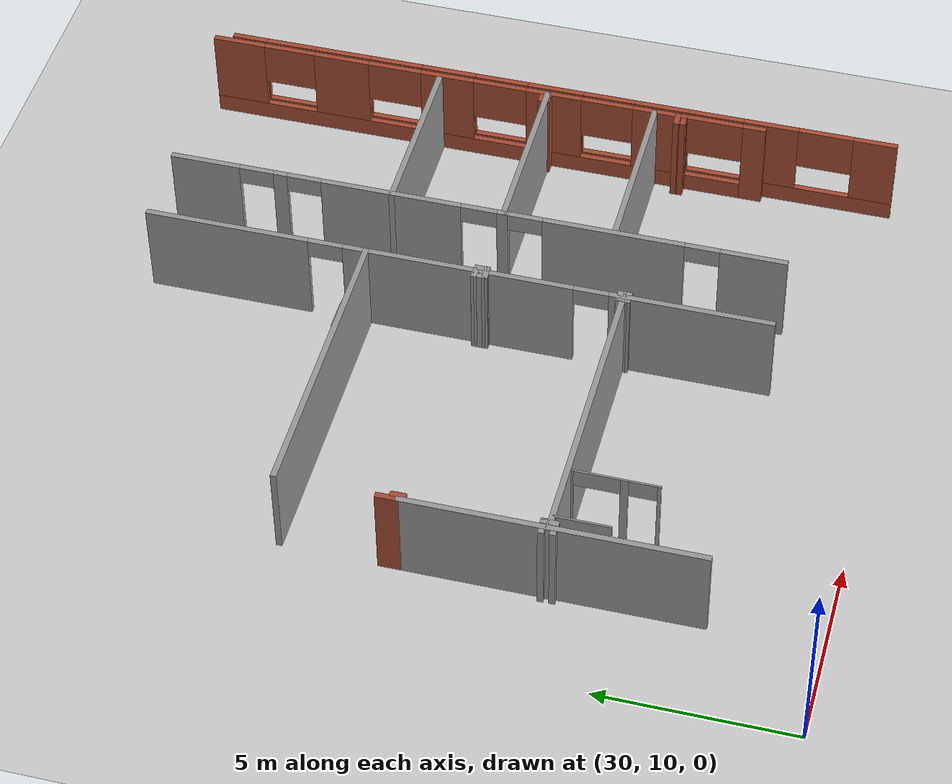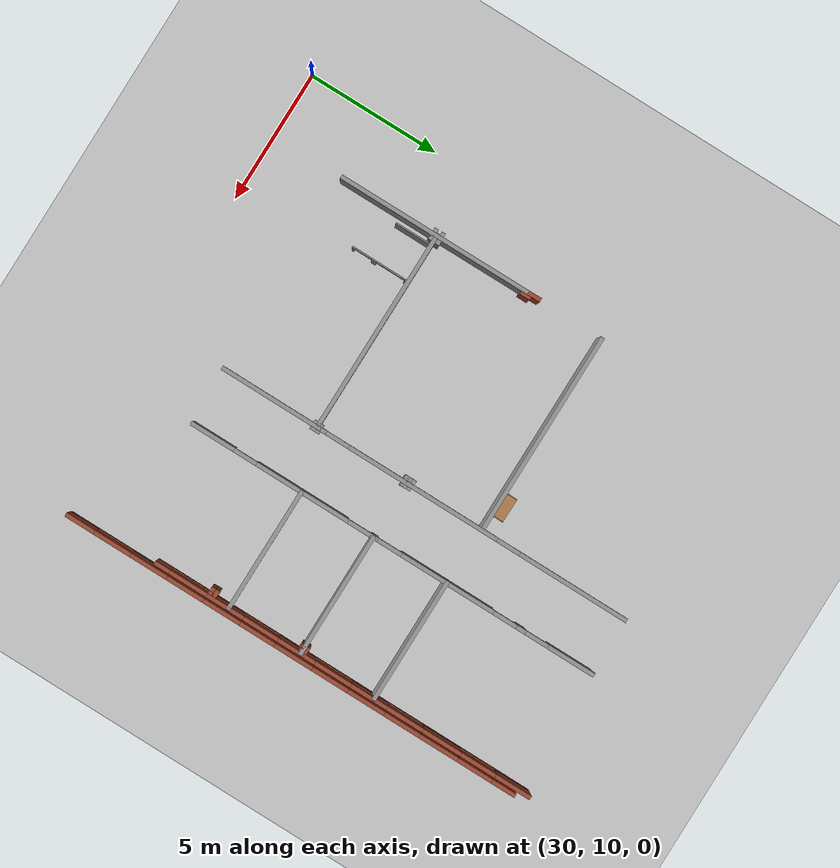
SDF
<sdf version="1.6">
 <world name="default">
  <model name="ground_plane">
   <static>1</static>
   <link name="link">
    <collision name="collision">
     <geometry><plane><normal>0 0 1</normal><size>100 100</size></plane></geometry>
     <surface><friction><ode><mu>100</mu><mu2>50</mu2></ode></friction></surface>
    </collision>
    <visual name="visual">
     <cast_shadows>0</cast_shadows>
     <geometry><plane><normal>0 0 1</normal><size>100 100</size></plane></geometry>
     <material>
      <script><uri>file://media/materials/scripts/gazebo.material</uri><name>Gazebo/Grey</name></script>
     </material>
    </visual>
   </link>
  </model>
  <model name="CVSSP">
   <pose>23.8714 24.094 0 0 -0 0</pose>
   <link name="Wall_11">
    <pose>16.2898 -3.24326 0 0 0 -1.57079</pose>
    <visual name="Wall_11_Visual_0">
     <pose>-5.93516 0 1.25 0 -0 0</pose>
     <geometry><box><size>4.26019 0.15 2.5</size></box></geometry>
     <material>
      <script><uri>file://media/materials/scripts/gazebo.material</uri><name>Gazebo/Grey</name></script>
      <ambient>0.588235 0.588235 0.588235 1</ambient>
     </material>
    </visual>
    <collision name="Wall_11_Collision_0">
     <geometry><box><size>4.26019 0.15 2.5</size></box></geometry>
     <pose>-5.93516 0 1.25 0 -0 0</pose>
    </collision>
    <visual name="Wall_11_Visual_1">
     <pose>0.054186 0 1.25 0 -0 0</pose>
     <geometry><box><size>5.9185 0.15 2.5</size></box></geometry>
     <material>
      <script><uri>file://media/materials/scripts/gazebo.material</uri><name>Gazebo/Grey</name></script>
      <ambient>0.588235 0.588235 0.588235 1</ambient>
     </material>
    </visual>
    <collision name="Wall_11_Collision_1">
     <geometry><box><size>5.9185 0.15 2.5</size></box></geometry>
     <pose>0.054186 0 1.25 0 -0 0</pose>
    </collision>
    <visual name="Wall_11_Visual_2">
     <pose>5.98935 0 1.25 0 -0 0</pose>
     <geometry><box><size>4.15182 0.15 2.5</size></box></geometry>
     <material>
      <script><uri>file://media/materials/scripts/gazebo.material</uri><name>Gazebo/Grey</name></script>
      <ambient>0.588235 0.588235 0.588235 1</ambient>
     </material>
    </visual>
    <collision name="Wall_11_Collision_2">
     <geometry><box><size>4.15182 0.15 2.5</size></box></geometry>
     <pose>5.98935 0 1.25 0 -0 0</pose>
    </collision>
    <visual name="Wall_11_Visual_3">
     <pose>-3.35506 0 2.25 0 -0 0</pose>
     <geometry><box><size>0.9 0.15 0.5</size></box></geometry>
     <material>
      <script><uri>file://media/materials/scripts/gazebo.material</uri><name>Gazebo/Grey</name></script>
      <ambient>0.588235 0.588235 0.588235 1</ambient>
     </material>
    </visual>
    <collision name="Wall_11_Collision_3">
     <geometry><box><size>0.9 0.15 0.5</size></box></geometry>
     <pose>-3.35506 0 2.25 0 -0 0</pose>
    </collision>
    <visual name="Wall_11_Visual_4">
     <pose>3.46344 0 2.25 0 -0 0</pose>
     <geometry><box><size>0.9 0.15 0.5</size></box></geometry>
     <material>
      <script><uri>file://media/materials/scripts/gazebo.material</uri><name>Gazebo/Grey</name></script>
      <ambient>0.588235 0.588235 0.588235 1</ambient>
     </material>
    </visual>
    <collision name="Wall_11_Collision_4">
     <geometry><box><size>0.9 0.15 0.5</size></box></geometry>
     <pose>3.46344 0 2.25 0 -0 0</pose>
    </collision>
   </link>
   <link name="Wall_116">
    <collision name="Wall_116_Collision">
     <geometry><box><size>7.43734 0.15 2.5</size></box></geometry>
     <pose>0 0 1.25 0 -0 0</pose>
    </collision>
    <visual name="Wall_116_Visual">
     <pose>0 0 1.25 0 -0 0</pose>
     <geometry><box><size>7.43734 0.15 2.5</size></box></geometry>
     <material>
      <script><uri>file://media/materials/scripts/gazebo.material</uri><name>Gazebo/Grey</name></script>
      <ambient>1 1 1 1</ambient>
     </material>
    </visual>
    <pose>8.67152 -7.59872 0 0 -0 1.57447</pose>
   </link>
   <link name="Wall_118">
    <collision name="Wall_118_Collision">
     <geometry><box><size>0.6489 0.15 2.5</size></box></geometry>
     <pose>0 0 1.25 0 -0 0</pose>
    </collision>
    <visual name="Wall_118_Visual">
     <pose>0 0 1.25 0 -0 0</pose>
     <geometry><box><size>0.6489 0.15 2.5</size></box></geometry>
     <material>
      <script><uri>file://media/materials/scripts/gazebo.material</uri><name>Gazebo/Bricks</name></script>
      <ambient>1 1 1 1</ambient>
     </material>
    </visual>
    <pose>8.65546 -3.70564 0 0 0 -1.56013</pose>
   </link>
   <link name="Wall_122">
    <collision name="Wall_122_Collision">
     <geometry><box><size>0.399527 0.15 2.5</size></box></geometry>
     <pose>0 0 1.25 0 -0 0</pose>
    </collision>
    <visual name="Wall_122_Visual">
     <pose>0 0 1.25 0 -0 0</pose>
     <geometry><box><size>0.399527 0.15 2.5</size></box></geometry>
     <material>
      <script><uri>file://media/materials/scripts/gazebo.material</uri><name>Gazebo/Bricks</name></script>
      <ambient>1 1 1 1</ambient>
     </material>
    </visual>
    <pose>8.77507 -3.90399 0 0 0 -1.5708</pose>
   </link>
   <link name="Wall_125">
    <collision name="Wall_125_Collision">
     <geometry><box><size>7.75 0.15 2.5</size></box></geometry>
     <pose>0 0 1.25 0 -0 0</pose>
    </collision>
    <visual name="Wall_125_Visual">
     <pose>0 0 1.25 0 -0 0</pose>
     <geometry><box><size>7.75 0.15 2.5</size></box></geometry>
     <material>
      <script><uri>file://media/materials/scripts/gazebo.material</uri><name>Gazebo/Grey</name></script>
      <ambient>1 1 1 1</ambient>
     </material>
    </visual>
    <pose>12.4797 -0.937315 0 0 -0 3.14159</pose>
   </link>
   <link name="Wall_127">
    <collision name="Wall_127_Collision">
     <geometry><box><size>7.75 0.15 2.5</size></box></geometry>
     <pose>0 0 1.25 0 -0 0</pose>
    </collision>
    <visual name="Wall_127_Visual">
     <pose>0 0 1.25 0 -0 0</pose>
     <geometry><box><size>7.75 0.15 2.5</size></box></geometry>
     <material>
      <script><uri>file://media/materials/scripts/gazebo.material</uri><name>Gazebo/Grey</name></script>
      <ambient>0.588235 0.588235 0.588235 1</ambient>
     </material>
    </visual>
    <pose>12.4552 -7.51532 0 0 -0 0</pose>
   </link>
   <link name="Wall_134">
    <pose>23.0834 -2.24791 0 0 -0 1.57065</pose>
    <visual name="Wall_134_Visual_0">
     <pose>-7.19251 0 1.25 0 -0 0</pose>
     <geometry><box><size>0.601822 0.15 2.5</size></box></geometry>
     <material>
      <script><uri>file://media/materials/scripts/gazebo.material</uri><name>Gazebo/Bricks</name></script>
      <ambient>1 1 1 1</ambient>
     </material>
    </visual>
    <collision name="Wall_134_Collision_0">
     <geometry><box><size>0.601822 0.15 2.5</size></box></geometry>
     <pose>-7.19251 0 1.25 0 -0 0</pose>
    </collision>
    <visual name="Wall_134_Visual_1">
     <pose>0.300911 0 0.25 0 -0 0</pose>
     <geometry><box><size>14.385 0.15 0.5</size></box></geometry>
     <material>
      <script><uri>file://media/materials/scripts/gazebo.material</uri><name>Gazebo/Bricks</name></script>
      <ambient>1 1 1 1</ambient>
     </material>
    </visual>
    <collision name="Wall_134_Collision_1">
     <geometry><box><size>14.385 0.15 0.5</size></box></geometry>
     <pose>0.300911 0 0.25 0 -0 0</pose>
    </collision>
    <visual name="Wall_134_Visual_2">
     <pose>-4.69343 0 1.5 0 -0 0</pose>
     <geometry><box><size>1.46267 0.15 2</size></box></geometry>
     <material>
      <script><uri>file://media/materials/scripts/gazebo.material</uri><name>Gazebo/Bricks</name></script>
      <ambient>1 1 1 1</ambient>
     </material>
    </visual>
    <collision name="Wall_134_Collision_2">
     <geometry><box><size>1.46267 0.15 2</size></box></geometry>
     <pose>-4.69343 0 1.5 0 -0 0</pose>
    </collision>
    <visual name="Wall_134_Visual_3">
     <pose>-1.84084 0 1.5 0 -0 0</pose>
     <geometry><box><size>1.4912 0.15 2</size></box></geometry>
     <material>
      <script><uri>file://media/materials/scripts/gazebo.material</uri><name>Gazebo/Bricks</name></script>
      <ambient>1 1 1 1</ambient>
     </material>
    </visual>
    <collision name="Wall_134_Collision_3">
     <geometry><box><size>1.4912 0.15 2</size></box></geometry>
     <pose>-1.84084 0 1.5 0 -0 0</pose>
    </collision>
    <visual name="Wall_134_Visual_4">
     <pose>1.05448 0 1.5 0 -0 0</pose>
     <geometry><box><size>1.43416 0.15 2</size></box></geometry>
     <material>
      <script><uri>file://media/materials/scripts/gazebo.material</uri><name>Gazebo/Bricks</name></script>
      <ambient>1 1 1 1</ambient>
     </material>
    </visual>
    <collision name="Wall_134_Collision_4">
     <geometry><box><size>1.43416 0.15 2</size></box></geometry>
     <pose>1.05448 0 1.5 0 -0 0</pose>
    </collision>
    <visual name="Wall_134_Visual_5">
     <pose>3.9612 0 1.5 0 -0 0</pose>
     <geometry><box><size>1.50259 0.15 2</size></box></geometry>
     <material>
      <script><uri>file://media/materials/scripts/gazebo.material</uri><name>Gazebo/Bricks</name></script>
      <ambient>1 1 1 1</ambient>
     </material>
    </visual>
    <collision name="Wall_134_Collision_5">
     <geometry><box><size>1.50259 0.15 2</size></box></geometry>
     <pose>3.9612 0 1.5 0 -0 0</pose>
    </collision>
    <visual name="Wall_134_Visual_6">
     <pose>6.79134 0 1.5 0 -0 0</pose>
     <geometry><box><size>1.40418 0.15 2</size></box></geometry>
     <material>
      <script><uri>file://media/materials/scripts/gazebo.material</uri><name>Gazebo/Bricks</name></script>
      <ambient>1 1 1 1</ambient>
     </material>
    </visual>
    <collision name="Wall_134_Collision_6">
     <geometry><box><size>1.40418 0.15 2</size></box></geometry>
     <pose>6.79134 0 1.5 0 -0 0</pose>
    </collision>
    <visual name="Wall_134_Visual_7">
     <pose>-6.15818 0 1.9 0 -0 0</pose>
     <geometry><box><size>1.46684 0.15 1.2</size></box></geometry>
     <material>
      <script><uri>file://media/materials/scripts/gazebo.material</uri><name>Gazebo/Bricks</name></script>
      <ambient>1 1 1 1</ambient>
     </material>
    </visual>
    <collision name="Wall_134_Collision_7">
     <geometry><box><size>1.46684 0.15 1.2</size></box></geometry>
     <pose>-6.15818 0 1.9 0 -0 0</pose>
    </collision>
    <visual name="Wall_134_Visual_8">
     <pose>-3.27427 0 1.9 0 -0 0</pose>
     <geometry><box><size>1.37565 0.15 1.2</size></box></geometry>
     <material>
      <script><uri>file://media/materials/scripts/gazebo.material</uri><name>Gazebo/Bricks</name></script>
      <ambient>1 1 1 1</ambient>
     </material>
    </visual>
    <collision name="Wall_134_Collision_8">
     <geometry><box><size>1.37565 0.15 1.2</size></box></geometry>
     <pose>-3.27427 0 1.9 0 -0 0</pose>
    </collision>
    <visual name="Wall_134_Visual_9">
     <pose>-0.378919 0 1.9 0 -0 0</pose>
     <geometry><box><size>1.43264 0.15 1.2</size></box></geometry>
     <material>
      <script><uri>file://media/materials/scripts/gazebo.material</uri><name>Gazebo/Bricks</name></script>
      <ambient>1 1 1 1</ambient>
     </material>
    </visual>
    <collision name="Wall_134_Collision_9">
     <geometry><box><size>1.43264 0.15 1.2</size></box></geometry>
     <pose>-0.378919 0 1.9 0 -0 0</pose>
    </collision>
    <visual name="Wall_134_Visual_10">
     <pose>2.49073 0 1.9 0 -0 0</pose>
     <geometry><box><size>1.43834 0.15 1.2</size></box></geometry>
     <material>
      <script><uri>file://media/materials/scripts/gazebo.material</uri><name>Gazebo/Bricks</name></script>
      <ambient>1 1 1 1</ambient>
     </material>
    </visual>
    <collision name="Wall_134_Collision_10">
     <geometry><box><size>1.43834 0.15 1.2</size></box></geometry>
     <pose>2.49073 0 1.9 0 -0 0</pose>
    </collision>
    <visual name="Wall_134_Visual_11">
     <pose>5.40087 0 1.9 0 -0 0</pose>
     <geometry><box><size>1.37675 0.15 1.2</size></box></geometry>
     <material>
      <script><uri>file://media/materials/scripts/gazebo.material</uri><name>Gazebo/Bricks</name></script>
      <ambient>1 1 1 1</ambient>
     </material>
    </visual>
    <collision name="Wall_134_Collision_11">
     <geometry><box><size>1.37675 0.15 1.2</size></box></geometry>
     <pose>5.40087 0 1.9 0 -0 0</pose>
    </collision>
   </link>
   <link name="Wall_148">
    <pose>23.2939 -4.18787 0 0 0 -1.5707</pose>
    <visual name="Wall_148_Visual_0">
     <pose>-8.49404 0 1.25 0 -0 0</pose>
     <geometry><box><size>0.935478 0.15 2.5</size></box></geometry>
     <material>
      <script><uri>file://media/materials/scripts/gazebo.material</uri><name>Gazebo/Bricks</name></script>
      <ambient>1 1 1 1</ambient>
     </material>
    </visual>
    <collision name="Wall_148_Collision_0">
     <geometry><box><size>0.935478 0.15 2.5</size></box></geometry>
     <pose>-8.49404 0 1.25 0 -0 0</pose>
    </collision>
    <visual name="Wall_148_Visual_1">
     <pose>0.467739 0 0.25 0 -0 0</pose>
     <geometry><box><size>16.9881 0.15 0.5</size></box></geometry>
     <material>
      <script><uri>file://media/materials/scripts/gazebo.material</uri><name>Gazebo/Bricks</name></script>
      <ambient>1 1 1 1</ambient>
     </material>
    </visual>
    <collision name="Wall_148_Collision_1">
     <geometry><box><size>16.9881 0.15 0.5</size></box></geometry>
     <pose>0.467739 0 0.25 0 -0 0</pose>
    </collision>
    <visual name="Wall_148_Visual_2">
     <pose>-5.90972 0 1.5 0 -0 0</pose>
     <geometry><box><size>1.49689 0.15 2</size></box></geometry>
     <material>
      <script><uri>file://media/materials/scripts/gazebo.material</uri><name>Gazebo/Bricks</name></script>
      <ambient>1 1 1 1</ambient>
     </material>
    </visual>
    <collision name="Wall_148_Collision_2">
     <geometry><box><size>1.49689 0.15 2</size></box></geometry>
     <pose>-5.90972 0 1.5 0 -0 0</pose>
    </collision>
    <visual name="Wall_148_Visual_3">
     <pose>-3.00584 0 1.5 0 -0 0</pose>
     <geometry><box><size>1.45698 0.15 2</size></box></geometry>
     <material>
      <script><uri>file://media/materials/scripts/gazebo.material</uri><name>Gazebo/Bricks</name></script>
      <ambient>1 1 1 1</ambient>
     </material>
    </visual>
    <collision name="Wall_148_Collision_3">
     <geometry><box><size>1.45698 0.15 2</size></box></geometry>
     <pose>-3.00584 0 1.5 0 -0 0</pose>
    </collision>
    <visual name="Wall_148_Visual_4">
     <pose>-0.101966 0 1.5 0 -0 0</pose>
     <geometry><box><size>1.50828 0.15 2</size></box></geometry>
     <material>
      <script><uri>file://media/materials/scripts/gazebo.material</uri><name>Gazebo/Bricks</name></script>
      <ambient>1 1 1 1</ambient>
     </material>
    </visual>
    <collision name="Wall_148_Collision_4">
     <geometry><box><size>1.50828 0.15 2</size></box></geometry>
     <pose>-0.101966 0 1.5 0 -0 0</pose>
    </collision>
    <visual name="Wall_148_Visual_5">
     <pose>2.74776 0 1.5 0 -0 0</pose>
     <geometry><box><size>1.46268 0.15 2</size></box></geometry>
     <material>
      <script><uri>file://media/materials/scripts/gazebo.material</uri><name>Gazebo/Bricks</name></script>
      <ambient>1 1 1 1</ambient>
     </material>
    </visual>
    <collision name="Wall_148_Collision_5">
     <geometry><box><size>1.46268 0.15 2</size></box></geometry>
     <pose>2.74776 0 1.5 0 -0 0</pose>
    </collision>
    <visual name="Wall_148_Visual_6">
     <pose>5.65733 0 1.5 0 -0 0</pose>
     <geometry><box><size>1.44558 0.15 2</size></box></geometry>
     <material>
      <script><uri>file://media/materials/scripts/gazebo.material</uri><name>Gazebo/Bricks</name></script>
      <ambient>1 1 1 1</ambient>
     </material>
    </visual>
    <collision name="Wall_148_Collision_6">
     <geometry><box><size>1.44558 0.15 2</size></box></geometry>
     <pose>5.65733 0 1.5 0 -0 0</pose>
    </collision>
    <visual name="Wall_148_Visual_7">
     <pose>8.39012 0 1.5 0 -0 0</pose>
     <geometry><box><size>1.14332 0.15 2</size></box></geometry>
     <material>
      <script><uri>file://media/materials/scripts/gazebo.material</uri><name>Gazebo/Bricks</name></script>
      <ambient>1 1 1 1</ambient>
     </material>
    </visual>
    <collision name="Wall_148_Collision_7">
     <geometry><box><size>1.14332 0.15 2</size></box></geometry>
     <pose>8.39012 0 1.5 0 -0 0</pose>
    </collision>
    <visual name="Wall_148_Visual_8">
     <pose>-7.34223 0 1.9 0 -0 0</pose>
     <geometry><box><size>1.36813 0.15 1.2</size></box></geometry>
     <material>
      <script><uri>file://media/materials/scripts/gazebo.material</uri><name>Gazebo/Bricks</name></script>
      <ambient>1 1 1 1</ambient>
     </material>
    </visual>
    <collision name="Wall_148_Collision_8">
     <geometry><box><size>1.36813 0.15 1.2</size></box></geometry>
     <pose>-7.34223 0 1.9 0 -0 0</pose>
    </collision>
    <visual name="Wall_148_Visual_9">
     <pose>-4.4478 0 1.9 0 -0 0</pose>
     <geometry><box><size>1.42694 0.15 1.2</size></box></geometry>
     <material>
      <script><uri>file://media/materials/scripts/gazebo.material</uri><name>Gazebo/Bricks</name></script>
      <ambient>1 1 1 1</ambient>
     </material>
    </visual>
    <collision name="Wall_148_Collision_9">
     <geometry><box><size>1.42694 0.15 1.2</size></box></geometry>
     <pose>-4.4478 0 1.9 0 -0 0</pose>
    </collision>
    <visual name="Wall_148_Visual_10">
     <pose>-1.56673 0 1.9 0 -0 0</pose>
     <geometry><box><size>1.42124 0.15 1.2</size></box></geometry>
     <material>
      <script><uri>file://media/materials/scripts/gazebo.material</uri><name>Gazebo/Bricks</name></script>
      <ambient>1 1 1 1</ambient>
     </material>
    </visual>
    <collision name="Wall_148_Collision_10">
     <geometry><box><size>1.42124 0.15 1.2</size></box></geometry>
     <pose>-1.56673 0 1.9 0 -0 0</pose>
    </collision>
    <visual name="Wall_148_Visual_11">
     <pose>1.3343 0 1.9 0 -0 0</pose>
     <geometry><box><size>1.36425 0.15 1.2</size></box></geometry>
     <material>
      <script><uri>file://media/materials/scripts/gazebo.material</uri><name>Gazebo/Bricks</name></script>
      <ambient>1 1 1 1</ambient>
     </material>
    </visual>
    <collision name="Wall_148_Collision_11">
     <geometry><box><size>1.36425 0.15 1.2</size></box></geometry>
     <pose>1.3343 0 1.9 0 -0 0</pose>
    </collision>
    <visual name="Wall_148_Visual_12">
     <pose>4.20682 0 1.9 0 -0 0</pose>
     <geometry><box><size>1.45543 0.15 1.2</size></box></geometry>
     <material>
      <script><uri>file://media/materials/scripts/gazebo.material</uri><name>Gazebo/Bricks</name></script>
      <ambient>1 1 1 1</ambient>
     </material>
    </visual>
    <collision name="Wall_148_Collision_12">
     <geometry><box><size>1.45543 0.15 1.2</size></box></geometry>
     <pose>4.20682 0 1.9 0 -0 0</pose>
    </collision>
    <visual name="Wall_148_Visual_13">
     <pose>7.09929 0 1.9 0 -0 0</pose>
     <geometry><box><size>1.43834 0.15 1.2</size></box></geometry>
     <material>
      <script><uri>file://media/materials/scripts/gazebo.material</uri><name>Gazebo/Bricks</name></script>
      <ambient>1 1 1 1</ambient>
     </material>
    </visual>
    <collision name="Wall_148_Collision_13">
     <geometry><box><size>1.43834 0.15 1.2</size></box></geometry>
     <pose>7.09929 0 1.9 0 -0 0</pose>
    </collision>
   </link>
   <link name="Wall_166">
    <collision name="Wall_166_Collision">
     <geometry><box><size>4.75 0.15 2.5</size></box></geometry>
     <pose>0 0 1.25 0 -0 0</pose>
    </collision>
    <visual name="Wall_166_Visual">
     <pose>0 0 1.25 0 -0 0</pose>
     <geometry><box><size>4.75 0.15 2.5</size></box></geometry>
     <material>
      <script><uri>file://media/materials/scripts/gazebo.material</uri><name>Gazebo/Grey</name></script>
      <ambient>0.588235 0.588235 0.588235 1</ambient>
     </material>
    </visual>
    <pose>20.7514 -6.79871 0 0 -0 0</pose>
   </link>
   <link name="Wall_168">
    <collision name="Wall_168_Collision">
     <geometry><box><size>4.75 0.15 2.5</size></box></geometry>
     <pose>0 0 1.25 0 -0 0</pose>
    </collision>
    <visual name="Wall_168_Visual">
     <pose>0 0 1.25 0 -0 0</pose>
     <geometry><box><size>4.75 0.15 2.5</size></box></geometry>
     <material>
      <script><uri>file://media/materials/scripts/gazebo.material</uri><name>Gazebo/Grey</name></script>
      <ambient>0.588235 0.588235 0.588235 1</ambient>
     </material>
    </visual>
    <pose>20.7514 -3.92247 0 0 -0 0</pose>
   </link>
   <link name="Wall_170">
    <collision name="Wall_170_Collision">
     <geometry><box><size>4.75 0.15 2.5</size></box></geometry>
     <pose>0 0 1.25 0 -0 0</pose>
    </collision>
    <visual name="Wall_170_Visual">
     <pose>0 0 1.25 0 -0 0</pose>
     <geometry><box><size>4.75 0.15 2.5</size></box></geometry>
     <material>
      <script><uri>file://media/materials/scripts/gazebo.material</uri><name>Gazebo/Grey</name></script>
      <ambient>0.588235 0.588235 0.588235 1</ambient>
     </material>
    </visual>
    <pose>20.7313 -1.006 0 0 -0 0</pose>
   </link>
   <link name="Wall_67">
    <pose>18.433 -3.16776 0 0 -0 1.57026</pose>
    <visual name="Wall_67_Visual_0">
     <pose>-7.18077 0 1.25 0 -0 0</pose>
     <geometry><box><size>1.71739 0.15 2.5</size></box></geometry>
     <material>
      <script><uri>file://media/materials/scripts/gazebo.material</uri><name>Gazebo/Grey</name></script>
      <ambient>0.588235 0.588235 0.588235 1</ambient>
     </material>
    </visual>
    <collision name="Wall_67_Collision_0">
     <geometry><box><size>1.71739 0.15 2.5</size></box></geometry>
     <pose>-7.18077 0 1.25 0 -0 0</pose>
    </collision>
    <visual name="Wall_67_Visual_1">
     <pose>-3.59924 0 1.25 0 -0 0</pose>
     <geometry><box><size>3.64566 0.15 2.5</size></box></geometry>
     <material>
      <script><uri>file://media/materials/scripts/gazebo.material</uri><name>Gazebo/Grey</name></script>
      <ambient>0.588235 0.588235 0.588235 1</ambient>
     </material>
    </visual>
    <collision name="Wall_67_Collision_1">
     <geometry><box><size>3.64566 0.15 2.5</size></box></geometry>
     <pose>-3.59924 0 1.25 0 -0 0</pose>
    </collision>
    <visual name="Wall_67_Visual_2">
     <pose>-0.733075 0 1.25 0 -0 0</pose>
     <geometry><box><size>0.286679 0.15 2.5</size></box></geometry>
     <material>
      <script><uri>file://media/materials/scripts/gazebo.material</uri><name>Gazebo/Grey</name></script>
      <ambient>0.588235 0.588235 0.588235 1</ambient>
     </material>
    </visual>
    <collision name="Wall_67_Collision_2">
     <geometry><box><size>0.286679 0.15 2.5</size></box></geometry>
     <pose>-0.733075 0 1.25 0 -0 0</pose>
    </collision>
    <visual name="Wall_67_Visual_3">
     <pose>2.19347 0 1.25 0 -0 0</pose>
     <geometry><box><size>3.68595 0.15 2.5</size></box></geometry>
     <material>
      <script><uri>file://media/materials/scripts/gazebo.material</uri><name>Gazebo/Grey</name></script>
      <ambient>0.588235 0.588235 0.588235 1</ambient>
     </material>
    </visual>
    <collision name="Wall_67_Collision_3">
     <geometry><box><size>3.68595 0.15 2.5</size></box></geometry>
     <pose>2.19347 0 1.25 0 -0 0</pose>
    </collision>
    <visual name="Wall_67_Visual_4">
     <pose>5.11998 0 1.25 0 -0 0</pose>
     <geometry><box><size>0.36709 0.15 2.5</size></box></geometry>
     <material>
      <script><uri>file://media/materials/scripts/gazebo.material</uri><name>Gazebo/Grey</name></script>
      <ambient>0.588235 0.588235 0.588235 1</ambient>
     </material>
    </visual>
    <collision name="Wall_67_Collision_4">
     <geometry><box><size>0.36709 0.15 2.5</size></box></geometry>
     <pose>5.11998 0 1.25 0 -0 0</pose>
    </collision>
    <visual name="Wall_67_Visual_5">
     <pose>7.1215 0 1.25 0 -0 0</pose>
     <geometry><box><size>1.83593 0.15 2.5</size></box></geometry>
     <material>
      <script><uri>file://media/materials/scripts/gazebo.material</uri><name>Gazebo/Grey</name></script>
      <ambient>0.588235 0.588235 0.588235 1</ambient>
     </material>
    </visual>
    <collision name="Wall_67_Collision_5">
     <geometry><box><size>1.83593 0.15 2.5</size></box></geometry>
     <pose>7.1215 0 1.25 0 -0 0</pose>
    </collision>
    <visual name="Wall_67_Visual_6">
     <pose>-5.87207 0 2.25 0 -0 0</pose>
     <geometry><box><size>0.9 0.15 0.5</size></box></geometry>
     <material>
      <script><uri>file://media/materials/scripts/gazebo.material</uri><name>Gazebo/Grey</name></script>
      <ambient>0.588235 0.588235 0.588235 1</ambient>
     </material>
    </visual>
    <collision name="Wall_67_Collision_6">
     <geometry><box><size>0.9 0.15 0.5</size></box></geometry>
     <pose>-5.87207 0 2.25 0 -0 0</pose>
    </collision>
    <visual name="Wall_67_Visual_7">
     <pose>-1.32641 0 2.25 0 -0 0</pose>
     <geometry><box><size>0.9 0.15 0.5</size></box></geometry>
     <material>
      <script><uri>file://media/materials/scripts/gazebo.material</uri><name>Gazebo/Grey</name></script>
      <ambient>0.588235 0.588235 0.588235 1</ambient>
     </material>
    </visual>
    <collision name="Wall_67_Collision_7">
     <geometry><box><size>0.9 0.15 0.5</size></box></geometry>
     <pose>-1.32641 0 2.25 0 -0 0</pose>
    </collision>
    <visual name="Wall_67_Visual_8">
     <pose>-0.119622 0 2.25 0 -0 0</pose>
     <geometry><box><size>0.940227 0.15 0.5</size></box></geometry>
     <material>
      <script><uri>file://media/materials/scripts/gazebo.material</uri><name>Gazebo/Grey</name></script>
      <ambient>0.588235 0.588235 0.588235 1</ambient>
     </material>
    </visual>
    <collision name="Wall_67_Collision_8">
     <geometry><box><size>0.940227 0.15 0.5</size></box></geometry>
     <pose>-0.119622 0 2.25 0 -0 0</pose>
    </collision>
    <visual name="Wall_67_Visual_9">
     <pose>4.48644 0 2.25 0 -0 0</pose>
     <geometry><box><size>0.9 0.15 0.5</size></box></geometry>
     <material>
      <script><uri>file://media/materials/scripts/gazebo.material</uri><name>Gazebo/Grey</name></script>
      <ambient>0.588235 0.588235 0.588235 1</ambient>
     </material>
    </visual>
    <collision name="Wall_67_Collision_9">
     <geometry><box><size>0.9 0.15 0.5</size></box></geometry>
     <pose>4.48644 0 2.25 0 -0 0</pose>
    </collision>
    <visual name="Wall_67_Visual_10">
     <pose>5.75353 0 2.25 0 -0 0</pose>
     <geometry><box><size>0.9 0.15 0.5</size></box></geometry>
     <material>
      <script><uri>file://media/materials/scripts/gazebo.material</uri><name>Gazebo/Grey</name></script>
      <ambient>0.588235 0.588235 0.588235 1</ambient>
     </material>
    </visual>
    <collision name="Wall_67_Collision_10">
     <geometry><box><size>0.9 0.15 0.5</size></box></geometry>
     <pose>5.75353 0 2.25 0 -0 0</pose>
    </collision>
   </link>
   <link name="Wall_739">
    <collision name="Wall_739_Collision">
     <geometry><box><size>0.412351 0.15 2.5</size></box></geometry>
     <pose>0 0 1.25 0 -0 0</pose>
    </collision>
    <visual name="Wall_739_Visual">
     <pose>0 0 1.25 0 -0 0</pose>
     <geometry><box><size>0.412351 0.15 2.5</size></box></geometry>
     <material>
      <script><uri>file://media/materials/scripts/gazebo.material</uri><name>Gazebo/Grey</name></script>
      <ambient>1 1 1 1</ambient>
     </material>
    </visual>
    <pose>16.2625 -3.77466 0 0 0 -0.066568</pose>
   </link>
   <link name="Wall_740">
    <collision name="Wall_740_Collision">
     <geometry><box><size>0.395485 0.15 2.5</size></box></geometry>
     <pose>0 0 1.25 0 -0 0</pose>
    </collision>
    <visual name="Wall_740_Visual">
     <pose>0 0 1.25 0 -0 0</pose>
     <geometry><box><size>0.395485 0.15 2.5</size></box></geometry>
     <material>
      <script><uri>file://media/materials/scripts/gazebo.material</uri><name>Gazebo/Grey</name></script>
      <ambient>1 1 1 1</ambient>
     </material>
    </visual>
    <pose>16.3981 -3.90583 0 0 0 -1.5351</pose>
   </link>
   <link name="Wall_741">
    <collision name="Wall_741_Collision">
     <geometry><box><size>0.42166 0.15 2.5</size></box></geometry>
     <pose>0 0 1.25 0 -0 0</pose>
    </collision>
    <visual name="Wall_741_Visual">
     <pose>0 0 1.25 0 -0 0</pose>
     <geometry><box><size>0.42166 0.15 2.5</size></box></geometry>
     <material>
      <script><uri>file://media/materials/scripts/gazebo.material</uri><name>Gazebo/Grey</name></script>
      <ambient>1 1 1 1</ambient>
     </material>
    </visual>
    <pose>16.2669 -4.03264 0 0 0 -3.10935</pose>
   </link>
   <link name="Wall_742">
    <collision name="Wall_742_Collision">
     <geometry><box><size>0.421096 0.15 2.5</size></box></geometry>
     <pose>0 0 1.25 0 -0 0</pose>
    </collision>
    <visual name="Wall_742_Visual">
     <pose>0 0 1.25 0 -0 0</pose>
     <geometry><box><size>0.421096 0.15 2.5</size></box></geometry>
     <material>
      <script><uri>file://media/materials/scripts/gazebo.material</uri><name>Gazebo/Grey</name></script>
      <ambient>1 1 1 1</ambient>
     </material>
    </visual>
    <pose>16.1314 -3.90146 0 0 -0 1.5708</pose>
   </link>
   <link name="Wall_745">
    <collision name="Wall_745_Collision">
     <geometry><box><size>0.4145 0.15 2.5</size></box></geometry>
     <pose>0 0 1.25 0 -0 0</pose>
    </collision>
    <visual name="Wall_745_Visual">
     <pose>0 0 1.25 0 -0 0</pose>
     <geometry><box><size>0.4145 0.15 2.5</size></box></geometry>
     <material>
      <script><uri>file://media/materials/scripts/gazebo.material</uri><name>Gazebo/Bricks</name></script>
      <ambient>1 1 1 1</ambient>
     </material>
    </visual>
    <pose>22.9482 -3.80796 0 0 -0 3.14159</pose>
   </link>
   <link name="Wall_746">
    <collision name="Wall_746_Collision">
     <geometry><box><size>0.31675 0.15 2.5</size></box></geometry>
     <pose>0 0 1.25 0 -0 0</pose>
    </collision>
    <visual name="Wall_746_Visual">
     <pose>0 0 1.25 0 -0 0</pose>
     <geometry><box><size>0.31675 0.15 2.5</size></box></geometry>
     <material>
      <script><uri>file://media/materials/scripts/gazebo.material</uri><name>Gazebo/Bricks</name></script>
      <ambient>1 1 1 1</ambient>
     </material>
    </visual>
    <pose>22.816 -3.89133 0 0 0 -1.5708</pose>
   </link>
   <link name="Wall_747">
    <collision name="Wall_747_Collision">
     <geometry><box><size>0.420495 0.15 2.5</size></box></geometry>
     <pose>0 0 1.25 0 -0 0</pose>
    </collision>
    <visual name="Wall_747_Visual">
     <pose>0 0 1.25 0 -0 0</pose>
     <geometry><box><size>0.420495 0.15 2.5</size></box></geometry>
     <material>
      <script><uri>file://media/materials/scripts/gazebo.material</uri><name>Gazebo/Bricks</name></script>
      <ambient>1 1 1 1</ambient>
     </material>
    </visual>
    <pose>22.9511 -3.97471 0 0 -0 0</pose>
   </link>
   <link name="Wall_749">
    <collision name="Wall_749_Collision">
     <geometry><box><size>0.354987 0.15 2.5</size></box></geometry>
     <pose>0 0 1.25 0 -0 0</pose>
    </collision>
    <visual name="Wall_749_Visual">
     <pose>0 0 1.25 0 -0 0</pose>
     <geometry><box><size>0.354987 0.15 2.5</size></box></geometry>
     <material>
      <script><uri>file://media/materials/scripts/gazebo.material</uri><name>Gazebo/Grey</name></script>
      <ambient>1 1 1 1</ambient>
     </material>
    </visual>
    <pose>16.2901 -7.41966 0 0 -0 0</pose>
   </link>
   <link name="Wall_750">
    <collision name="Wall_750_Collision">
     <geometry><box><size>0.368212 0.15 2.5</size></box></geometry>
     <pose>0 0 1.25 0 -0 0</pose>
    </collision>
    <visual name="Wall_750_Visual">
     <pose>0 0 1.25 0 -0 0</pose>
     <geometry><box><size>0.368212 0.15 2.5</size></box></geometry>
     <material>
      <script><uri>file://media/materials/scripts/gazebo.material</uri><name>Gazebo/Grey</name></script>
      <ambient>1 1 1 1</ambient>
     </material>
    </visual>
    <pose>16.3926 -7.52876 0 0 0 -1.5708</pose>
   </link>
   <link name="Wall_751">
    <collision name="Wall_751_Collision">
     <geometry><box><size>0.361703 0.15 2.5</size></box></geometry>
     <pose>0 0 1.25 0 -0 0</pose>
    </collision>
    <visual name="Wall_751_Visual">
     <pose>0 0 1.25 0 -0 0</pose>
     <geometry><box><size>0.361703 0.15 2.5</size></box></geometry>
     <material>
      <script><uri>file://media/materials/scripts/gazebo.material</uri><name>Gazebo/Grey</name></script>
      <ambient>1 1 1 1</ambient>
     </material>
    </visual>
    <pose>16.2868 -7.63787 0 0 -0 3.14159</pose>
   </link>
   <link name="Wall_752">
    <collision name="Wall_752_Collision">
     <geometry><box><size>0.368313 0.15 2.5</size></box></geometry>
     <pose>0 0 1.25 0 -0 0</pose>
    </collision>
    <visual name="Wall_752_Visual">
     <pose>0 0 1.25 0 -0 0</pose>
     <geometry><box><size>0.368313 0.15 2.5</size></box></geometry>
     <material>
      <script><uri>file://media/materials/scripts/gazebo.material</uri><name>Gazebo/Grey</name></script>
      <ambient>1 1 1 1</ambient>
     </material>
    </visual>
    <pose>16.1843 -7.52876 0 0 -0 1.5405</pose>
   </link>
   <link name="Wall_755">
    <collision name="Wall_755_Collision">
     <geometry><box><size>0.407888 0.15 2.5</size></box></geometry>
     <pose>0 0 1.25 0 -0 0</pose>
    </collision>
    <visual name="Wall_755_Visual">
     <pose>0 0 1.25 0 -0 0</pose>
     <geometry><box><size>0.407888 0.15 2.5</size></box></geometry>
     <material>
      <script><uri>file://media/materials/scripts/gazebo.material</uri><name>Gazebo/Bricks</name></script>
      <ambient>1 1 1 1</ambient>
     </material>
    </visual>
    <pose>22.9423 -7.41966 0 0 -0 3.14159</pose>
   </link>
   <link name="Wall_756">
    <collision name="Wall_756_Collision">
     <geometry><box><size>0.322052 0.15 2.5</size></box></geometry>
     <pose>0 0 1.25 0 -0 0</pose>
    </collision>
    <visual name="Wall_756_Visual">
     <pose>0 0 1.25 0 -0 0</pose>
     <geometry><box><size>0.322052 0.15 2.5</size></box></geometry>
     <material>
      <script><uri>file://media/materials/scripts/gazebo.material</uri><name>Gazebo/Bricks</name></script>
      <ambient>1 1 1 1</ambient>
     </material>
    </visual>
    <pose>22.8134 -7.50562 0 0 0 -1.5708</pose>
   </link>
   <link name="Wall_757">
    <collision name="Wall_757_Collision">
     <geometry><box><size>0.4145 0.15 2.5</size></box></geometry>
     <pose>0 0 1.25 0 -0 0</pose>
    </collision>
    <visual name="Wall_757_Visual">
     <pose>0 0 1.25 0 -0 0</pose>
     <geometry><box><size>0.4145 0.15 2.5</size></box></geometry>
     <material>
      <script><uri>file://media/materials/scripts/gazebo.material</uri><name>Gazebo/Bricks</name></script>
      <ambient>1 1 1 1</ambient>
     </material>
    </visual>
    <pose>22.9456 -7.59158 0 0 -0 0</pose>
   </link>
   <link name="Wall_862">
    <collision name="Wall_862_Collision">
     <geometry><box><size>0.457357 0.15 2.5</size></box></geometry>
     <pose>0 0 1.25 0 -0 0</pose>
    </collision>
    <visual name="Wall_862_Visual">
     <pose>0 0 1.25 0 -0 0</pose>
     <geometry><box><size>0.457357 0.15 2.5</size></box></geometry>
     <material>
      <script><uri>file://media/materials/scripts/gazebo.material</uri><name>Gazebo/Grey</name></script>
      <ambient>1 1 1 1</ambient>
     </material>
    </visual>
    <pose>8.68766 -7.36008 0 0 0 -3.09906</pose>
   </link>
   <link name="Wall_864">
    <collision name="Wall_864_Collision">
     <geometry><box><size>0.437748 0.15 2.5</size></box></geometry>
     <pose>0 0 1.25 0 -0 0</pose>
    </collision>
    <visual name="Wall_864_Visual">
     <pose>0 0 1.25 0 -0 0</pose>
     <geometry><box><size>0.437748 0.15 2.5</size></box></geometry>
     <material>
      <script><uri>file://media/materials/scripts/gazebo.material</uri><name>Gazebo/Grey</name></script>
      <ambient>1 1 1 1</ambient>
     </material>
    </visual>
    <pose>8.6844 -7.64775 0 0 -0 0</pose>
   </link>
   <link name="Wall_865">
    <collision name="Wall_865_Collision">
     <geometry><box><size>0.444502 0.15 2.5</size></box></geometry>
     <pose>0 0 1.25 0 -0 0</pose>
    </collision>
    <visual name="Wall_865_Visual">
     <pose>0 0 1.25 0 -0 0</pose>
     <geometry><box><size>0.444502 0.15 2.5</size></box></geometry>
     <material>
      <script><uri>file://media/materials/scripts/gazebo.material</uri><name>Gazebo/Grey</name></script>
      <ambient>1 1 1 1</ambient>
     </material>
    </visual>
    <pose>8.83477 -7.50065 0 0 -0 1.52638</pose>
   </link>
   <link name="Wall_869">
    <pose>10.4916 -8.67726 0 0 -0 1.5675</pose>
    <visual name="Wall_869_Visual_0">
     <pose>-1.02983 0 1.25 0 -0 0</pose>
     <geometry><box><size>0.090343 0.05 2.5</size></box></geometry>
     <material>
      <script><uri>file://media/materials/scripts/gazebo.material</uri><name>Gazebo/Grey</name></script>
      <ambient>1 1 1 1</ambient>
     </material>
    </visual>
    <collision name="Wall_869_Collision_0">
     <geometry><box><size>0.090343 0.05 2.5</size></box></geometry>
     <pose>-1.02983 0 1.25 0 -0 0</pose>
    </collision>
    <visual name="Wall_869_Visual_1">
     <pose>-0.197948 0 1.25 0 -0 0</pose>
     <geometry><box><size>0.190812 0.05 2.5</size></box></geometry>
     <material>
      <script><uri>file://media/materials/scripts/gazebo.material</uri><name>Gazebo/Grey</name></script>
      <ambient>1 1 1 1</ambient>
     </material>
    </visual>
    <collision name="Wall_869_Collision_1">
     <geometry><box><size>0.190812 0.05 2.5</size></box></geometry>
     <pose>-0.197948 0 1.25 0 -0 0</pose>
    </collision>
    <visual name="Wall_869_Visual_2">
     <pose>1.04926 0 1.25 0 -0 0</pose>
     <geometry><box><size>0.051484 0.05 2.5</size></box></geometry>
     <material>
      <script><uri>file://media/materials/scripts/gazebo.material</uri><name>Gazebo/Grey</name></script>
      <ambient>1 1 1 1</ambient>
     </material>
    </visual>
    <collision name="Wall_869_Collision_2">
     <geometry><box><size>0.051484 0.05 2.5</size></box></geometry>
     <pose>1.04926 0 1.25 0 -0 0</pose>
    </collision>
    <visual name="Wall_869_Visual_3">
     <pose>-0.639005 0 2.25 0 -0 0</pose>
     <geometry><box><size>0.691303 0.05 0.5</size></box></geometry>
     <material>
      <script><uri>file://media/materials/scripts/gazebo.material</uri><name>Gazebo/Grey</name></script>
      <ambient>1 1 1 1</ambient>
     </material>
    </visual>
    <collision name="Wall_869_Collision_3">
     <geometry><box><size>0.691303 0.05 0.5</size></box></geometry>
     <pose>-0.639005 0 2.25 0 -0 0</pose>
    </collision>
    <visual name="Wall_869_Visual_4">
     <pose>0.460487 0 2.25 0 -0 0</pose>
     <geometry><box><size>1.12606 0.05 0.5</size></box></geometry>
     <material>
      <script><uri>file://media/materials/scripts/gazebo.material</uri><name>Gazebo/Grey</name></script>
      <ambient>1 1 1 1</ambient>
     </material>
    </visual>
    <collision name="Wall_869_Collision_4">
     <geometry><box><size>1.12606 0.05 0.5</size></box></geometry>
     <pose>0.460487 0 2.25 0 -0 0</pose>
    </collision>
   </link>
   <link name="Wall_875">
    <collision name="Wall_875_Collision">
     <geometry><box><size>1.40028 0.05 2.5</size></box></geometry>
     <pose>0 0 1.25 0 -0 0</pose>
    </collision>
    <visual name="Wall_875_Visual">
     <pose>0 0 1.25 0 -0 0</pose>
     <geometry><box><size>1.40028 0.05 2.5</size></box></geometry>
     <material>
      <script><uri>file://media/materials/scripts/gazebo.material</uri><name>Gazebo/Grey</name></script>
      <ambient>1 1 1 1</ambient>
     </material>
    </visual>
    <pose>9.03113 -8.21526 0 0 -0 1.5708</pose>
   </link>
   <static>1</static>
  </model>
  <model name="bookshelf_oak">
   <link name="link">
    <inertial><mass>1</mass></inertial>
    <visual name="visual4">
     <pose>0 -0.195 0.03 0 -0 0</pose>
     <geometry><box><size>0.88 0.4 0.06</size></box></geometry>
     <material>
      <script><uri>file://media/materials/scripts/gazebo.material</uri><name>Gazebo/Wood</name></script>
      <shader type="pixel"/>
     </material>
    </visual>
    <visual name="visual3">
     <pose>-0.45 -0.195 0.6 0 -0 0</pose>
     <geometry><box><size>0.02 0.4 1.2</size></box></geometry>
     <material>
      <script><uri>file://media/materials/scripts/gazebo.material</uri><name>Gazebo/Wood</name></script>
      <shader type="pixel"/>
     </material>
    </visual>
    <visual name="visual5">
     <pose>0 -0.195 1.19 0 -0 0</pose>
     <geometry><box><size>0.88 0.4 0.02</size></box></geometry>
     <material>
      <script><uri>file://media/materials/scripts/gazebo.material</uri><name>Gazebo/Wood</name></script>
      <shader type="pixel"/>
     </material>
    </visual>
    <visual name="visual2">
     <pose>0.45 -0.195 0.6 0 -0 0</pose>
     <geometry><box><size>0.02 0.4 1.2</size></box></geometry>
     <material>
      <script><uri>file://media/materials/scripts/gazebo.material</uri><name>Gazebo/Wood</name></script>
      <shader type="pixel"/>
     </material>
    </visual>
    <visual name="visual1">
     <pose>0 0.005 0.6 0 -0 0</pose>
     <geometry><box><size>0.9 0.01 1.2</size></box></geometry>
     <material>
      <script><uri>file://media/materials/scripts/gazebo.material</uri><name>Gazebo/Wood</name></script>
      <shader type="pixel"/>
     </material>
    </visual>
    <visual name="visual6">
     <pose>0 -0.195 0.43 0 -0 0</pose>
     <geometry><box><size>0.88 0.4 0.02</size></box></geometry>
     <material>
      <script><uri>file://media/materials/scripts/gazebo.material</uri><name>Gazebo/Wood</name></script>
      <shader type="pixel"/>
     </material>
    </visual>
    <visual name="visual7">
     <pose>0 -0.195 0.8 0 -0 0</pose>
     <geometry><box><size>0.88 0.4 0.02</size></box></geometry>
     <material>
      <script><uri>file://media/materials/scripts/gazebo.material</uri><name>Gazebo/Wood</name></script>
      <shader type="pixel"/>
     </material>
    </visual>
    <collision name="back">
     <pose>0 0.005 0.6 0 -0 0</pose>
     <geometry><box><size>0.9 0.01 1.2</size></box></geometry>
     <surface>
      <friction>
       <ode><mu>1</mu><mu2>1</mu2><fdir1>0 0 0</fdir1><slip1>0</slip1><slip2>0</slip2></ode>
       <torsional>
        <coefficient>1</coefficient>
        <patch_radius>0</patch_radius>
        <surface_radius>0</surface_radius>
        <use_patch_radius>1</use_patch_radius>
        <ode><slip>0</slip></ode>
       </torsional>
      </friction>
      <bounce><restitution_coefficient>0</restitution_coefficient><threshold>1e+06</threshold></bounce>
      <contact>
       <collide_without_contact>0</collide_without_contact>
       <collide_without_contact_bitmask>1</collide_without_contact_bitmask>
       <collide_bitmask>1</collide_bitmask>
       <ode>
        <soft_cfm>0</soft_cfm>
        <soft_erp>0.2</soft_erp>
        <kp>1e+13</kp>
        <kd>1</kd>
        <max_vel>0.01</max_vel>
        <min_depth>0</min_depth>
       </ode>
       <bullet>
        <split_impulse>1</split_impulse>
        <split_impulse_penetration_threshold>-0.01</split_impulse_penetration_threshold>
        <soft_cfm>0</soft_cfm>
        <soft_erp>0.2</soft_erp>
        <kp>1e+13</kp>
        <kd>1</kd>
       </bullet>
      </contact>
     </surface>
    </collision>
    <collision name="left_side">
     <pose>0.45 -0.195 0.6 0 -0 0</pose>
     <geometry><box><size>0.02 0.4 1.2</size></box></geometry>
     <surface>
      <friction>
       <ode><mu>1</mu><mu2>1</mu2><fdir1>0 0 0</fdir1><slip1>0</slip1><slip2>0</slip2></ode>
       <torsional>
        <coefficient>1</coefficient>
        <patch_radius>0</patch_radius>
        <surface_radius>0</surface_radius>
        <use_patch_radius>1</use_patch_radius>
        <ode><slip>0</slip></ode>
       </torsional>
      </friction>
      <bounce><restitution_coefficient>0</restitution_coefficient><threshold>1e+06</threshold></bounce>
      <contact>
       <collide_without_contact>0</collide_without_contact>
       <collide_without_contact_bitmask>1</collide_without_contact_bitmask>
       <collide_bitmask>1</collide_bitmask>
       <ode>
        <soft_cfm>0</soft_cfm>
        <soft_erp>0.2</soft_erp>
        <kp>1e+13</kp>
        <kd>1</kd>
        <max_vel>0.01</max_vel>
        <min_depth>0</min_depth>
       </ode>
       <bullet>
        <split_impulse>1</split_impulse>
        <split_impulse_penetration_threshold>-0.01</split_impulse_penetration_threshold>
        <soft_cfm>0</soft_cfm>
        <soft_erp>0.2</soft_erp>
        <kp>1e+13</kp>
        <kd>1</kd>
       </bullet>
      </contact>
     </surface>
    </collision>
    <collision name="right_side">
     <pose>-0.45 -0.195 0.6 0 -0 0</pose>
     <geometry><box><size>0.02 0.4 1.2</size></box></geometry>
     <surface>
      <friction>
       <ode><mu>1</mu><mu2>1</mu2><fdir1>0 0 0</fdir1><slip1>0</slip1><slip2>0</slip2></ode>
       <torsional>
        <coefficient>1</coefficient>
        <patch_radius>0</patch_radius>
        <surface_radius>0</surface_radius>
        <use_patch_radius>1</use_patch_radius>
        <ode><slip>0</slip></ode>
       </torsional>
      </friction>
      <bounce><restitution_coefficient>0</restitution_coefficient><threshold>1e+06</threshold></bounce>
      <contact>
       <collide_without_contact>0</collide_without_contact>
       <collide_without_contact_bitmask>1</collide_without_contact_bitmask>
       <collide_bitmask>1</collide_bitmask>
       <ode>
        <soft_cfm>0</soft_cfm>
        <soft_erp>0.2</soft_erp>
        <kp>1e+13</kp>
        <kd>1</kd>
        <max_vel>0.01</max_vel>
        <min_depth>0</min_depth>
       </ode>
       <bullet>
        <split_impulse>1</split_impulse>
        <split_impulse_penetration_threshold>-0.01</split_impulse_penetration_threshold>
        <soft_cfm>0</soft_cfm>
        <soft_erp>0.2</soft_erp>
        <kp>1e+13</kp>
        <kd>1</kd>
       </bullet>
      </contact>
     </surface>
    </collision>
    <collision name="bottom">
     <pose>0 -0.195 0.03 0 -0 0</pose>
     <geometry><box><size>0.88 0.4 0.06</size></box></geometry>
     <surface>
      <friction>
       <ode><mu>1</mu><mu2>1</mu2><fdir1>0 0 0</fdir1><slip1>0</slip1><slip2>0</slip2></ode>
       <torsional>
        <coefficient>1</coefficient>
        <patch_radius>0</patch_radius>
        <surface_radius>0</surface_radius>
        <use_patch_radius>1</use_patch_radius>
        <ode><slip>0</slip></ode>
       </torsional>
      </friction>
      <bounce><restitution_coefficient>0</restitution_coefficient><threshold>1e+06</threshold></bounce>
      <contact>
       <collide_without_contact>0</collide_without_contact>
       <collide_without_contact_bitmask>1</collide_without_contact_bitmask>
       <collide_bitmask>1</collide_bitmask>
       <ode>
        <soft_cfm>0</soft_cfm>
        <soft_erp>0.2</soft_erp>
        <kp>1e+13</kp>
        <kd>1</kd>
        <max_vel>0.01</max_vel>
        <min_depth>0</min_depth>
       </ode>
       <bullet>
        <split_impulse>1</split_impulse>
        <split_impulse_penetration_threshold>-0.01</split_impulse_penetration_threshold>
        <soft_cfm>0</soft_cfm>
        <soft_erp>0.2</soft_erp>
        <kp>1e+13</kp>
        <kd>1</kd>
       </bullet>
      </contact>
     </surface>
    </collision>
    <collision name="top">
     <pose>0 -0.195 1.19 0 -0 0</pose>
     <geometry><box><size>0.88 0.4 0.02</size></box></geometry>
     <surface>
      <friction>
       <ode><mu>1</mu><mu2>1</mu2><fdir1>0 0 0</fdir1><slip1>0</slip1><slip2>0</slip2></ode>
       <torsional>
        <coefficient>1</coefficient>
        <patch_radius>0</patch_radius>
        <surface_radius>0</surface_radius>
        <use_patch_radius>1</use_patch_radius>
        <ode><slip>0</slip></ode>
       </torsional>
      </friction>
      <bounce><restitution_coefficient>0</restitution_coefficient><threshold>1e+06</threshold></bounce>
      <contact>
       <collide_without_contact>0</collide_without_contact>
       <collide_without_contact_bitmask>1</collide_without_contact_bitmask>
       <collide_bitmask>1</collide_bitmask>
       <ode>
        <soft_cfm>0</soft_cfm>
        <soft_erp>0.2</soft_erp>
        <kp>1e+13</kp>
        <kd>1</kd>
        <max_vel>0.01</max_vel>
        <min_depth>0</min_depth>
       </ode>
       <bullet>
        <split_impulse>1</split_impulse>
        <split_impulse_penetration_threshold>-0.01</split_impulse_penetration_threshold>
        <soft_cfm>0</soft_cfm>
        <soft_erp>0.2</soft_erp>
        <kp>1e+13</kp>
        <kd>1</kd>
       </bullet>
      </contact>
     </surface>
    </collision>
    <collision name="low_shelf">
     <pose>0 -0.195 0.43 0 -0 0</pose>
     <geometry><box><size>0.88 0.4 0.02</size></box></geometry>
     <surface>
      <friction>
       <ode><mu>1</mu><mu2>1</mu2><fdir1>0 0 0</fdir1><slip1>0</slip1><slip2>0</slip2></ode>
       <torsional>
        <coefficient>1</coefficient>
        <patch_radius>0</patch_radius>
        <surface_radius>0</surface_radius>
        <use_patch_radius>1</use_patch_radius>
        <ode><slip>0</slip></ode>
       </torsional>
      </friction>
      <bounce><restitution_coefficient>0</restitution_coefficient><threshold>1e+06</threshold></bounce>
      <contact>
       <collide_without_contact>0</collide_without_contact>
       <collide_without_contact_bitmask>1</collide_without_contact_bitmask>
       <collide_bitmask>1</collide_bitmask>
       <ode>
        <soft_cfm>0</soft_cfm>
        <soft_erp>0.2</soft_erp>
        <kp>1e+13</kp>
        <kd>1</kd>
        <max_vel>0.01</max_vel>
        <min_depth>0</min_depth>
       </ode>
       <bullet>
        <split_impulse>1</split_impulse>
        <split_impulse_penetration_threshold>-0.01</split_impulse_penetration_threshold>
        <soft_cfm>0</soft_cfm>
        <soft_erp>0.2</soft_erp>
        <kp>1e+13</kp>
        <kd>1</kd>
       </bullet>
      </contact>
     </surface>
    </collision>
    <collision name="high_shelf">
     <pose>0 -0.195 0.8 0 -0 0</pose>
     <geometry><box><size>0.88 0.4 0.02</size></box></geometry>
     <surface>
      <friction>
       <ode><mu>1</mu><mu2>1</mu2><fdir1>0 0 0</fdir1><slip1>0</slip1><slip2>0</slip2></ode>
       <torsional>
        <coefficient>1</coefficient>
        <patch_radius>0</patch_radius>
        <surface_radius>0</surface_radius>
        <use_patch_radius>1</use_patch_radius>
        <ode><slip>0</slip></ode>
       </torsional>
      </friction>
      <bounce><restitution_coefficient>0</restitution_coefficient><threshold>1e+06</threshold></bounce>
      <contact>
       <collide_without_contact>0</collide_without_contact>
       <collide_without_contact_bitmask>1</collide_without_contact_bitmask>
       <collide_bitmask>1</collide_bitmask>
       <ode>
        <soft_cfm>0</soft_cfm>
        <soft_erp>0.2</soft_erp>
        <kp>1e+13</kp>
        <kd>1</kd>
        <max_vel>0.01</max_vel>
        <min_depth>0</min_depth>
       </ode>
       <bullet>
        <split_impulse>1</split_impulse>
        <split_impulse_penetration_threshold>-0.01</split_impulse_penetration_threshold>
        <soft_cfm>0</soft_cfm>
        <soft_erp>0.2</soft_erp>
        <kp>1e+13</kp>
        <kd>1</kd>
       </bullet>
      </contact>
     </surface>
    </collision>
   </link>
   <static>1</static>
   <pose>39.0928 23.2737 0 0 -0 3.12767</pose>
  </model>
 </world>
</sdf>
